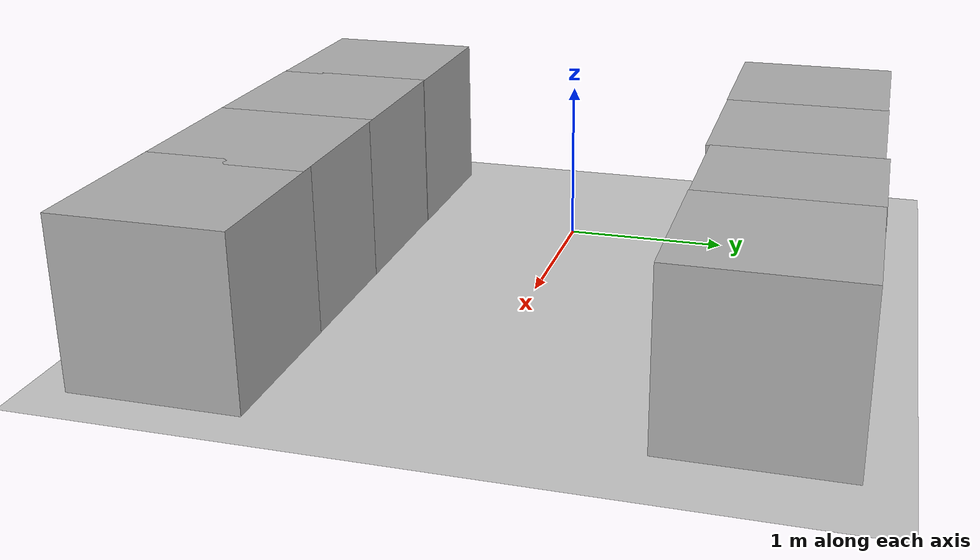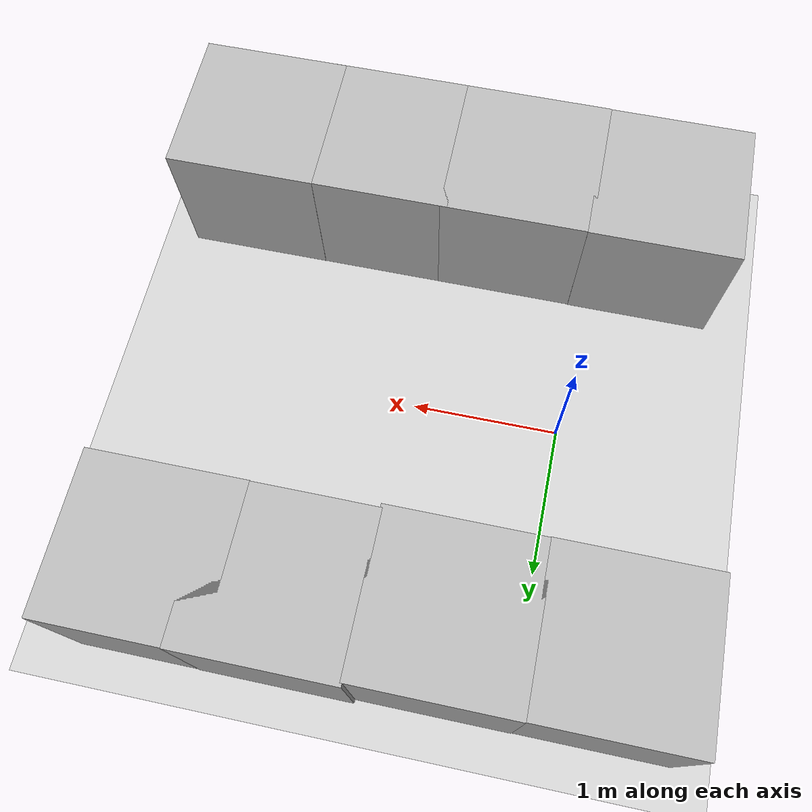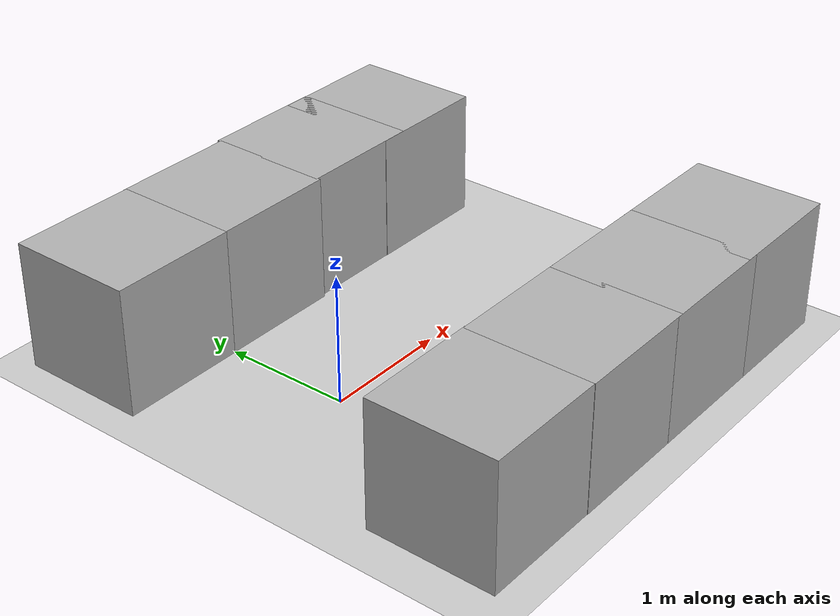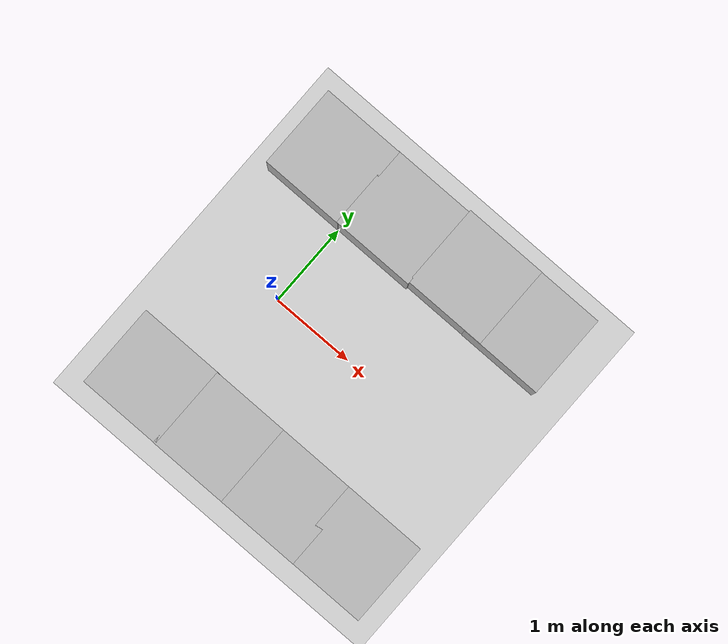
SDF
<sdf version='1.10'>
  <world name='empty'>
    <physics name='1ms' type='ignored'>
      <max_step_size>0.001</max_step_size>
      <real_time_factor>1</real_time_factor>
      <real_time_update_rate>1000</real_time_update_rate>
    </physics>
    <plugin name='gz::sim::systems::Physics' filename='gz-sim-physics-system'/>
    <plugin name='gz::sim::systems::UserCommands' filename='gz-sim-user-commands-system'/>
    <plugin name='gz::sim::systems::SceneBroadcaster' filename='gz-sim-scene-broadcaster-system'/>
    <plugin name='gz::sim::systems::Contact' filename='gz-sim-contact-system'/>
    <gravity>0 0 -9.8000000000000007</gravity>
    <magnetic_field>5.5644999999999998e-06 2.2875799999999999e-05 -4.2388400000000002e-05</magnetic_field>
    <atmosphere type='adiabatic'/>
    <scene>
      <ambient>0.400000006 0.400000006 0.400000006 1</ambient>
      <background>0.699999988 0.699999988 0.699999988 1</background>
      <shadows>true</shadows>
    </scene>
    <model name='ground_plane'>
      <static>true</static>
      <link name='link'>
        <collision name='collision'>
          <geometry>
            <plane>
              <normal>0 0 1</normal>
              <size>100 100</size>
            </plane>
          </geometry>
          <surface>
            <friction>
              <ode/>
            </friction>
            <bounce/>
            <contact/>
          </surface>
        </collision>
        <visual name='visual'>
          <geometry>
            <plane>
              <normal>0 0 1</normal>
              <size>100 100</size>
            </plane>
          </geometry>
          <material>
            <ambient>0.800000012 0.800000012 0.800000012 1</ambient>
            <diffuse>0.800000012 0.800000012 0.800000012 1</diffuse>
            <specular>0.800000012 0.800000012 0.800000012 1</specular>
          </material>
        </visual>
        <pose>0 0 0 0 0 0</pose>
        <inertial>
          <pose>0 0 0 0 0 0</pose>
          <mass>1</mass>
          <inertia>
            <ixx>1</ixx>
            <ixy>0</ixy>
            <ixz>0</ixz>
            <iyy>1</iyy>
            <iyz>0</iyz>
            <izz>1</izz>
          </inertia>
        </inertial>
        <enable_wind>false</enable_wind>
      </link>
      <pose>0 0 0 0 0 0</pose>
      <self_collide>false</self_collide>
    </model>
    <model name='box'>
      <pose>-0.43378548160711761 -1.5189495214954238 0.5 0 0 0</pose>
      <link name='box_link'>
        <inertial>
          <inertia>
            <ixx>0.16666</ixx>
            <ixy>0</ixy>
            <ixz>0</ixz>
            <iyy>0.16666</iyy>
            <iyz>0</iyz>
            <izz>0.16666</izz>
          </inertia>
          <mass>1</mass>
          <pose>0 0 0 0 0 0</pose>
        </inertial>
        <collision name='box_collision'>
          <geometry>
            <box>
              <size>1 1 1</size>
            </box>
          </geometry>
          <surface>
            <friction>
              <ode/>
            </friction>
            <bounce/>
            <contact/>
          </surface>
        </collision>
        <visual name='box_visual'>
          <geometry>
            <box>
              <size>1 1 1</size>
            </box>
          </geometry>
          <material>
            <ambient>0.300000012 0.300000012 0.300000012 1</ambient>
            <diffuse>0.699999988 0.699999988 0.699999988 1</diffuse>
            <specular>1 1 1 1</specular>
          </material>
        </visual>
        <pose>0 0 0 0 0 0</pose>
        <enable_wind>false</enable_wind>
      </link>
      <static>false</static>
      <self_collide>false</self_collide>
    </model>
    <model name='box_0'>
      <pose>-0.50633436908566676 1.4951594575671925 0.5 0 0 0</pose>
      <link name='box_link'>
        <inertial>
          <inertia>
            <ixx>0.16666</ixx>
            <ixy>0</ixy>
            <ixz>0</ixz>
            <iyy>0.16666</iyy>
            <iyz>0</iyz>
            <izz>0.16666</izz>
          </inertia>
          <mass>1</mass>
          <pose>0 0 0 0 0 0</pose>
        </inertial>
        <collision name='box_collision'>
          <geometry>
            <box>
              <size>1 1 1</size>
            </box>
          </geometry>
          <surface>
            <friction>
              <ode/>
            </friction>
            <bounce/>
            <contact/>
          </surface>
        </collision>
        <visual name='box_visual'>
          <geometry>
            <box>
              <size>1 1 1</size>
            </box>
          </geometry>
          <material>
            <ambient>0.300000012 0.300000012 0.300000012 1</ambient>
            <diffuse>0.699999988 0.699999988 0.699999988 1</diffuse>
            <specular>1 1 1 1</specular>
          </material>
        </visual>
        <pose>0 0 0 0 0 0</pose>
        <enable_wind>false</enable_wind>
      </link>
      <static>false</static>
      <self_collide>false</self_collide>
    </model>
    <model name='box_1'>
      <pose>0.47263703699125204 1.4983191936222715 0.5 0 0 0</pose>
      <link name='box_link'>
        <inertial>
          <inertia>
            <ixx>0.16666</ixx>
            <ixy>0</ixy>
            <ixz>0</ixz>
            <iyy>0.16666</iyy>
            <iyz>0</iyz>
            <izz>0.16666</izz>
          </inertia>
          <mass>1</mass>
          <pose>0 0 0 0 0 0</pose>
        </inertial>
        <collision name='box_collision'>
          <geometry>
            <box>
              <size>1 1 1</size>
            </box>
          </geometry>
          <surface>
            <friction>
              <ode/>
            </friction>
            <bounce/>
            <contact/>
          </surface>
        </collision>
        <visual name='box_visual'>
          <geometry>
            <box>
              <size>1 1 1</size>
            </box>
          </geometry>
          <material>
            <ambient>0.300000012 0.300000012 0.300000012 1</ambient>
            <diffuse>0.699999988 0.699999988 0.699999988 1</diffuse>
            <specular>1 1 1 1</specular>
          </material>
        </visual>
        <pose>0 0 0 0 0 0</pose>
        <enable_wind>false</enable_wind>
      </link>
      <static>false</static>
      <self_collide>false</self_collide>
    </model>
    <model name='box_2'>
      <pose>1.4591562763761723 1.521486316075225 0.5 0 0 0</pose>
      <link name='box_link'>
        <inertial>
          <inertia>
            <ixx>0.16666</ixx>
            <ixy>0</ixy>
            <ixz>0</ixz>
            <iyy>0.16666</iyy>
            <iyz>0</iyz>
            <izz>0.16666</izz>
          </inertia>
          <mass>1</mass>
          <pose>0 0 0 0 0 0</pose>
        </inertial>
        <collision name='box_collision'>
          <geometry>
            <box>
              <size>1 1 1</size>
            </box>
          </geometry>
          <surface>
            <friction>
              <ode/>
            </friction>
            <bounce/>
            <contact/>
          </surface>
        </collision>
        <visual name='box_visual'>
          <geometry>
            <box>
              <size>1 1 1</size>
            </box>
          </geometry>
          <material>
            <ambient>0.300000012 0.300000012 0.300000012 1</ambient>
            <diffuse>0.699999988 0.699999988 0.699999988 1</diffuse>
            <specular>1 1 1 1</specular>
          </material>
        </visual>
        <pose>0 0 0 0 0 0</pose>
        <enable_wind>false</enable_wind>
      </link>
      <static>false</static>
      <self_collide>false</self_collide>
    </model>
    <model name='box_3'>
      <pose>0.5402127617135879 -1.5223606759392068 0.5 0 0 0</pose>
      <link name='box_link'>
        <inertial>
          <inertia>
            <ixx>0.16666</ixx>
            <ixy>0</ixy>
            <ixz>0</ixz>
            <iyy>0.16666</iyy>
            <iyz>0</iyz>
            <izz>0.16666</izz>
          </inertia>
          <mass>1</mass>
          <pose>0 0 0 0 0 0</pose>
        </inertial>
        <collision name='box_collision'>
          <geometry>
            <box>
              <size>1 1 1</size>
            </box>
          </geometry>
          <surface>
            <friction>
              <ode/>
            </friction>
            <bounce/>
            <contact/>
          </surface>
        </collision>
        <visual name='box_visual'>
          <geometry>
            <box>
              <size>1 1 1</size>
            </box>
          </geometry>
          <material>
            <ambient>0.300000012 0.300000012 0.300000012 1</ambient>
            <diffuse>0.699999988 0.699999988 0.699999988 1</diffuse>
            <specular>1 1 1 1</specular>
          </material>
        </visual>
        <pose>0 0 0 0 0 0</pose>
        <enable_wind>false</enable_wind>
      </link>
      <static>false</static>
      <self_collide>false</self_collide>
    </model>
    <model name='box_4'>
      <pose>1.4913230396062642 -1.5226375396649998 0.5 0 0 0</pose>
      <link name='box_link'>
        <inertial>
          <inertia>
            <ixx>0.16666</ixx>
            <ixy>0</ixy>
            <ixz>0</ixz>
            <iyy>0.16666</iyy>
            <iyz>0</iyz>
            <izz>0.16666</izz>
          </inertia>
          <mass>1</mass>
          <pose>0 0 0 0 0 0</pose>
        </inertial>
        <collision name='box_collision'>
          <geometry>
            <box>
              <size>1 1 1</size>
            </box>
          </geometry>
          <surface>
            <friction>
              <ode/>
            </friction>
            <bounce/>
            <contact/>
          </surface>
        </collision>
        <visual name='box_visual'>
          <geometry>
            <box>
              <size>1 1 1</size>
            </box>
          </geometry>
          <material>
            <ambient>0.300000012 0.300000012 0.300000012 1</ambient>
            <diffuse>0.699999988 0.699999988 0.699999988 1</diffuse>
            <specular>1 1 1 1</specular>
          </material>
        </visual>
        <pose>0 0 0 0 0 0</pose>
        <enable_wind>false</enable_wind>
      </link>
      <static>false</static>
      <self_collide>false</self_collide>
    </model>
    <model name='box_5'>
      <pose>2.2425185347253982 1.5184751580932119 0.5 0 0 0</pose>
      <link name='box_link'>
        <inertial>
          <inertia>
            <ixx>0.16666</ixx>
            <ixy>0</ixy>
            <ixz>0</ixz>
            <iyy>0.16666</iyy>
            <iyz>0</iyz>
            <izz>0.16666</izz>
          </inertia>
          <mass>1</mass>
          <pose>0 0 0 0 0 0</pose>
        </inertial>
        <collision name='box_collision'>
          <geometry>
            <box>
              <size>1 1 1</size>
            </box>
          </geometry>
          <surface>
            <friction>
              <ode/>
            </friction>
            <bounce/>
            <contact/>
          </surface>
        </collision>
        <visual name='box_visual'>
          <geometry>
            <box>
              <size>1 1 1</size>
            </box>
          </geometry>
          <material>
            <ambient>0.300000012 0.300000012 0.300000012 1</ambient>
            <diffuse>0.699999988 0.699999988 0.699999988 1</diffuse>
            <specular>1 1 1 1</specular>
          </material>
        </visual>
        <pose>0 0 0 0 0 0</pose>
        <enable_wind>false</enable_wind>
      </link>
      <static>false</static>
      <self_collide>false</self_collide>
    </model>
    <model name='box_6'>
      <pose>2.4011839784931737 -1.5217219071250918 0.5 0 0 0</pose>
      <link name='box_link'>
        <inertial>
          <inertia>
            <ixx>0.16666</ixx>
            <ixy>0</ixy>
            <ixz>0</ixz>
            <iyy>0.16666</iyy>
            <iyz>0</iyz>
            <izz>0.16666</izz>
          </inertia>
          <mass>1</mass>
          <pose>0 0 0 0 0 0</pose>
        </inertial>
        <collision name='box_collision'>
          <geometry>
            <box>
              <size>1 1 1</size>
            </box>
          </geometry>
          <surface>
            <friction>
              <ode/>
            </friction>
            <bounce/>
            <contact/>
          </surface>
        </collision>
        <visual name='box_visual'>
          <geometry>
            <box>
              <size>1 1 1</size>
            </box>
          </geometry>
          <material>
            <ambient>0.300000012 0.300000012 0.300000012 1</ambient>
            <diffuse>0.699999988 0.699999988 0.699999988 1</diffuse>
            <specular>1 1 1 1</specular>
          </material>
        </visual>
        <pose>0 0 0 0 0 0</pose>
        <enable_wind>false</enable_wind>
      </link>
      <static>false</static>
      <self_collide>false</self_collide>
    </model>
    <light name='sun' type='directional'>
      <pose>0 0 10 0 0 0</pose>
      <cast_shadows>true</cast_shadows>
      <intensity>1</intensity>
      <direction>-0.5 0.10000000000000001 -0.90000000000000002</direction>
      <diffuse>0.800000012 0.800000012 0.800000012 1</diffuse>
      <specular>0.200000003 0.200000003 0.200000003 1</specular>
      <attenuation>
        <range>1000</range>
        <linear>0.01</linear>
        <constant>0.90000000000000002</constant>
        <quadratic>0.001</quadratic>
      </attenuation>
      <spot>
        <inner_angle>0</inner_angle>
        <outer_angle>0</outer_angle>
        <falloff>0</falloff>
      </spot>
    </light>
  </world>
</sdf>
